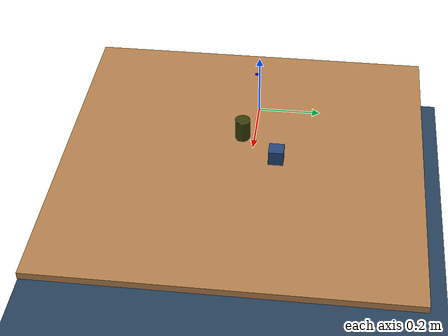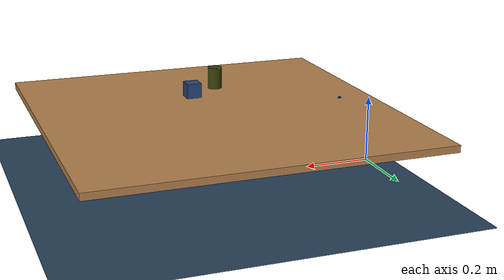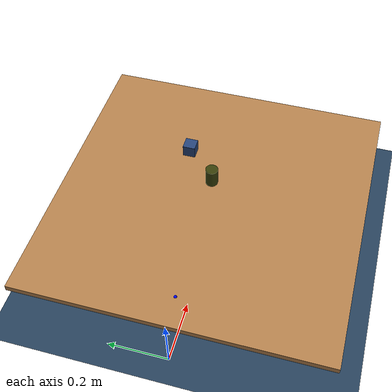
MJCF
<mujoco model="table_scene0">
  <compiler angle="radian"/>

  <option timestep="0.001" impratio="10" density="1.2" integrator="implicitfast" cone="elliptic">
    <flag multiccd="enable"/>
  </option>

  <visual>
    <global azimuth="120" elevation="-20"/>
    <quality shadowsize="8192"/>
    <headlight ambient="0.3 0.3 0.3" diffuse="0.5 0.5 0.5" specular="0 0 0"/>
    <scale forcewidth="0.025" contactwidth="0.05" contactheight="0.025" com="0.2" jointwidth="0.05" actuatorwidth="0.1" framelength="0.5" framewidth="0.02" constraint="0.02"/>
    <rgba haze="0.15 0.25 0.35 1"/>
  </visual>

  <statistic extent="1" center="0 0 0.1"/>

  <asset>
    <texture type="skybox" builtin="gradient" rgb1="0.3 0.5 0.7" rgb2="0 0 0" width="512" height="3072"/>
    <texture type="2d" name="groundplane" builtin="checker" mark="edge" rgb1="0.2 0.3 0.4" rgb2="0.1 0.2 0.3" markrgb="0.8 0.8 0.8" width="300" height="300"/>
    <texture type="2d" name="wood_tex" file="assets/wood.png"/>
    <material name="groundplane" texture="groundplane" texuniform="true" texrepeat="5 5" reflectance="0.2"/>
    <material name="wood" texture="wood_tex"/>
  </asset>

  <worldbody>
    <geom name="floor" size="0 0 0.05" type="plane" material="groundplane"/>
    <site name="robot" pos="0.1 0 0.21" rgba="0 0 1 1"/>
    <light pos="0 0 2" dir="0 0 -1" directional="true"/>
    <body name="table" pos="0.5 0 0.2">
      <geom size="0.5 0.5 0.01" type="box" material="wood"/>
      <camera name="table_cam" target="table" pos="-0.7 -0.7 0.2" mode="targetbody"/>
    </body>
    <body name="bin" pos="0.5 0 0.31">
      <joint type="free" limited="false" actuatorfrclimited="false"/>
      <geom size="0.02 0.03" type="cylinder" mass="0.05" rgba="0.210704 0.237627 0.0323554 1"/>
    </body>
    <body name="box" pos="0.6 0.1 0.31">
      <joint type="free" limited="false" actuatorfrclimited="false"/>
      <geom size="0.02 0.02 0.02" type="box" mass="0.05" rgba="0.148682 0.264276 0.468198 1"/>
    </body>
  </worldbody>
</mujoco>
